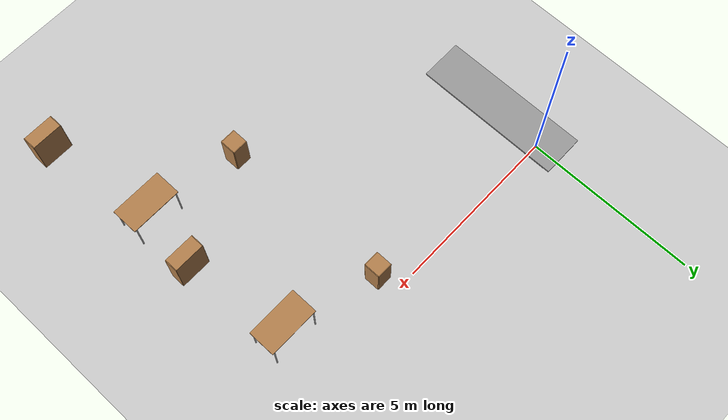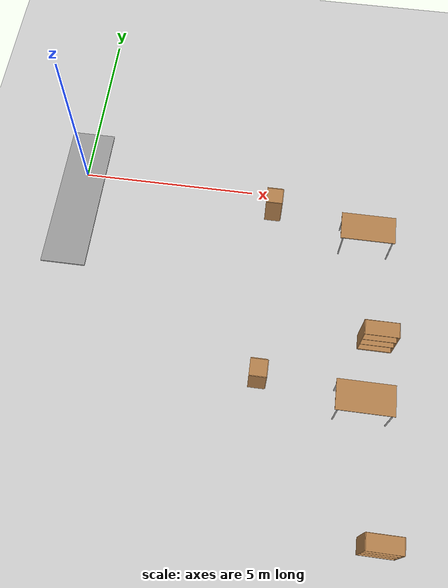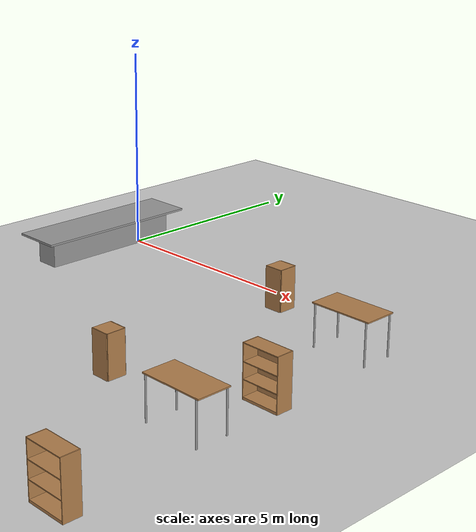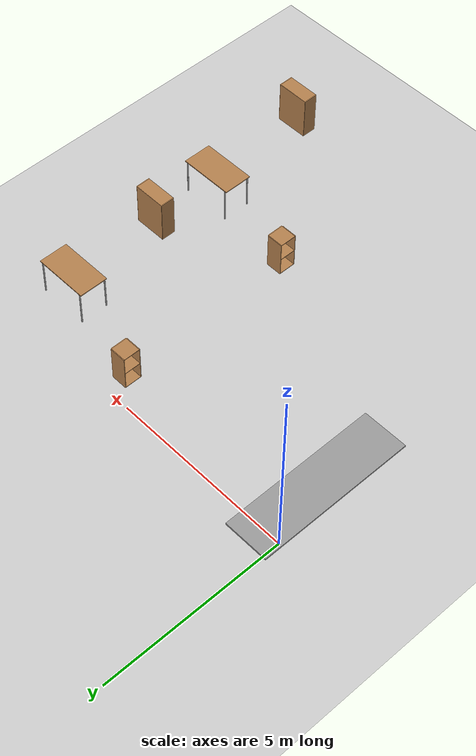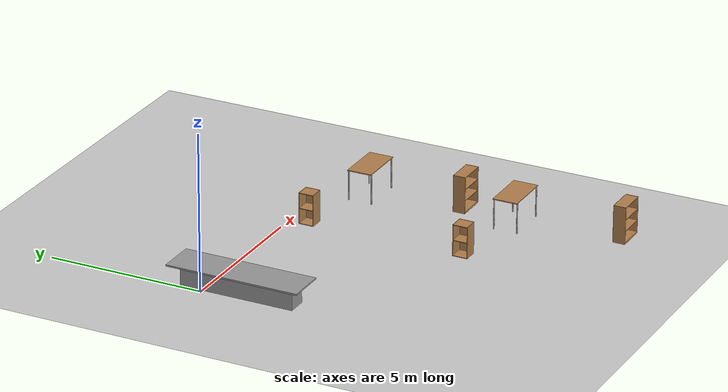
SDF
<sdf version="1.7">
 <world name="default">
  <model name="ground_plane">
   <static>1</static>
   <link name="link">
    <collision name="collision">
     <geometry><plane><normal>0 0 1</normal><size>100 100</size></plane></geometry>
     <surface>
      <contact><collide_bitmask>65535</collide_bitmask></contact>
      <friction><ode><mu>100</mu><mu2>50</mu2></ode></friction>
     </surface>
    </collision>
    <visual name="visual">
     <cast_shadows>0</cast_shadows>
     <geometry><plane><normal>0 0 1</normal><size>100 100</size></plane></geometry>
     <material>
      <script><uri>file://media/materials/scripts/gazebo.material</uri><name>Gazebo/Grey</name></script>
     </material>
    </visual>
   </link>
  </model>
  <model name="table_3">
   <static>1</static>
   <link name="link">
    <collision name="surface">
     <pose>0 0 1 0 -0 0</pose>
     <geometry><box><size>1.5 0.8 0.03</size></box></geometry>
     <surface><friction><ode><mu>0.6</mu><mu2>0.6</mu2></ode></friction></surface>
    </collision>
    <visual name="visual1">
     <pose>0 0 1 0 -0 0</pose>
     <geometry><box><size>1.5 0.8 0.03</size></box></geometry>
     <material>
      <script><uri>file://media/materials/scripts/gazebo.material</uri><name>Gazebo/Wood</name></script>
     </material>
    </visual>
    <collision name="front_left_leg">
     <pose>0.68 0.38 0.5 0 -0 0</pose>
     <geometry><cylinder><radius>0.02</radius><length>1</length></cylinder></geometry>
    </collision>
    <visual name="front_left_leg">
     <pose>0.68 0.38 0.5 0 -0 0</pose>
     <geometry><cylinder><radius>0.02</radius><length>1</length></cylinder></geometry>
     <material>
      <script><uri>file://media/materials/scripts/gazebo.material</uri><name>Gazebo/Grey</name></script>
     </material>
    </visual>
    <collision name="front_right_leg">
     <pose>0.68 -0.38 0.5 0 -0 0</pose>
     <geometry><cylinder><radius>0.02</radius><length>1</length></cylinder></geometry>
    </collision>
    <visual name="front_right_leg">
     <pose>0.68 -0.38 0.5 0 -0 0</pose>
     <geometry><cylinder><radius>0.02</radius><length>1</length></cylinder></geometry>
     <material>
      <script><uri>file://media/materials/scripts/gazebo.material</uri><name>Gazebo/Grey</name></script>
     </material>
    </visual>
    <collision name="back_right_leg">
     <pose>-0.68 -0.38 0.5 0 -0 0</pose>
     <geometry><cylinder><radius>0.02</radius><length>1</length></cylinder></geometry>
    </collision>
    <visual name="back_right_leg">
     <pose>-0.68 -0.38 0.5 0 -0 0</pose>
     <geometry><cylinder><radius>0.02</radius><length>1</length></cylinder></geometry>
     <material>
      <script><uri>file://media/materials/scripts/gazebo.material</uri><name>Gazebo/Grey</name></script>
     </material>
    </visual>
    <collision name="back_left_leg">
     <pose>-0.68 0.38 0.5 0 -0 0</pose>
     <geometry><cylinder><radius>0.02</radius><length>1</length></cylinder></geometry>
    </collision>
    <visual name="back_left_leg">
     <pose>-0.68 0.38 0.5 0 -0 0</pose>
     <geometry><cylinder><radius>0.02</radius><length>1</length></cylinder></geometry>
     <material>
      <script><uri>file://media/materials/scripts/gazebo.material</uri><name>Gazebo/Grey</name></script>
     </material>
    </visual>
   </link>
   <pose>8.35471 -1.29548 0 0 -0 0</pose>
  </model>
  <model name="table_4">
   <static>1</static>
   <link name="link">
    <collision name="surface">
     <pose>0 0 1 0 -0 0</pose>
     <geometry><box><size>1.5 0.8 0.03</size></box></geometry>
     <surface><friction><ode><mu>0.6</mu><mu2>0.6</mu2></ode></friction></surface>
    </collision>
    <visual name="visual1">
     <pose>0 0 1 0 -0 0</pose>
     <geometry><box><size>1.5 0.8 0.03</size></box></geometry>
     <material>
      <script><uri>file://media/materials/scripts/gazebo.material</uri><name>Gazebo/Wood</name></script>
     </material>
    </visual>
    <collision name="front_left_leg">
     <pose>0.68 0.38 0.5 0 -0 0</pose>
     <geometry><cylinder><radius>0.02</radius><length>1</length></cylinder></geometry>
    </collision>
    <visual name="front_left_leg">
     <pose>0.68 0.38 0.5 0 -0 0</pose>
     <geometry><cylinder><radius>0.02</radius><length>1</length></cylinder></geometry>
     <material>
      <script><uri>file://media/materials/scripts/gazebo.material</uri><name>Gazebo/Grey</name></script>
     </material>
    </visual>
    <collision name="front_right_leg">
     <pose>0.68 -0.38 0.5 0 -0 0</pose>
     <geometry><cylinder><radius>0.02</radius><length>1</length></cylinder></geometry>
    </collision>
    <visual name="front_right_leg">
     <pose>0.68 -0.38 0.5 0 -0 0</pose>
     <geometry><cylinder><radius>0.02</radius><length>1</length></cylinder></geometry>
     <material>
      <script><uri>file://media/materials/scripts/gazebo.material</uri><name>Gazebo/Grey</name></script>
     </material>
    </visual>
    <collision name="back_right_leg">
     <pose>-0.68 -0.38 0.5 0 -0 0</pose>
     <geometry><cylinder><radius>0.02</radius><length>1</length></cylinder></geometry>
    </collision>
    <visual name="back_right_leg">
     <pose>-0.68 -0.38 0.5 0 -0 0</pose>
     <geometry><cylinder><radius>0.02</radius><length>1</length></cylinder></geometry>
     <material>
      <script><uri>file://media/materials/scripts/gazebo.material</uri><name>Gazebo/Grey</name></script>
     </material>
    </visual>
    <collision name="back_left_leg">
     <pose>-0.68 0.38 0.5 0 -0 0</pose>
     <geometry><cylinder><radius>0.02</radius><length>1</length></cylinder></geometry>
    </collision>
    <visual name="back_left_leg">
     <pose>-0.68 0.38 0.5 0 -0 0</pose>
     <geometry><cylinder><radius>0.02</radius><length>1</length></cylinder></geometry>
     <material>
      <script><uri>file://media/materials/scripts/gazebo.material</uri><name>Gazebo/Grey</name></script>
     </material>
    </visual>
   </link>
   <pose>8.486 -6.08893 0 0 -0 0</pose>
  </model>
  <model name="cabinet_3">
   <static>1</static>
   <link name="cabinet_bottom_plate">
    <inertial>
     <pose>0 0 -1 0 -0 0</pose>
     <inertia><ixx>2.05</ixx><ixy>0</ixy><ixz>0</ixz><iyy>2.05</iyy><iyz>0</iyz><izz>2.05</izz></inertia>
     <mass>25</mass>
    </inertial>
    <collision name="cabinet_bottom_plate_geom">
     <pose>0 0 0.01 0 -0 0</pose>
     <geometry><box><size>0.45 0.45 0.02</size></box></geometry>
    </collision>
    <visual name="cabinet_bottom_plate_geom_visual">
     <pose>0 0 0.01 0 -0 0</pose>
     <geometry><box><size>0.45 0.45 0.02</size></box></geometry>
     <material>
      <script><uri>file://media/materials/scripts/gazebo.material</uri><name>Gazebo/Wood</name></script>
     </material>
    </visual>
    <collision name="cabinet_bottom_plate_geom_cabinet_back_plate">
     <pose>0.235 0 0.51 0 -0 0</pose>
     <geometry><box><size>0.02 0.45 1.02</size></box></geometry>
    </collision>
    <visual name="cabinet_bottom_plate_geom_cabinet_back_plate_visual">
     <pose>0.235 0 0.51 0 -0 0</pose>
     <geometry><box><size>0.02 0.45 1.02</size></box></geometry>
     <material>
      <script><uri>file://media/materials/scripts/gazebo.material</uri><name>Gazebo/Wood</name></script>
     </material>
    </visual>
    <collision name="cabinet_bottom_plate_geom_cabinet_left_plate">
     <pose>0 0.235 0.51 0 -0 0</pose>
     <geometry><box><size>0.45 0.02 1.02</size></box></geometry>
    </collision>
    <visual name="cabinet_bottom_plate_geom_cabinet_left_plate_visual">
     <pose>0 0.235 0.51 0 -0 0</pose>
     <geometry><box><size>0.45 0.02 1.02</size></box></geometry>
     <material>
      <script><uri>file://media/materials/scripts/gazebo.material</uri><name>Gazebo/Wood</name></script>
     </material>
    </visual>
    <collision name="cabinet_bottom_plate_geom_cabinet_middle_plate">
     <pose>0 0 0.51 0 -0 0</pose>
     <geometry><box><size>0.45 0.45 0.02</size></box></geometry>
    </collision>
    <visual name="cabinet_bottom_plate_geom_cabinet_middle_plate_visual">
     <pose>0 0 0.51 0 -0 0</pose>
     <geometry><box><size>0.45 0.45 0.02</size></box></geometry>
     <material>
      <script><uri>file://media/materials/scripts/gazebo.material</uri><name>Gazebo/Wood</name></script>
     </material>
    </visual>
    <collision name="cabinet_bottom_plate_geom_cabinet_right_plate">
     <pose>0 -0.235 0.51 0 -0 0</pose>
     <geometry><box><size>0.45 0.02 1.02</size></box></geometry>
    </collision>
    <visual name="cabinet_bottom_plate_geom_cabinet_right_plate_visual">
     <pose>0 -0.235 0.51 0 -0 0</pose>
     <geometry><box><size>0.45 0.02 1.02</size></box></geometry>
     <material>
      <script><uri>file://media/materials/scripts/gazebo.material</uri><name>Gazebo/Wood</name></script>
     </material>
    </visual>
    <collision name="cabinet_bottom_plate_geom_cabinet_top_plate">
     <pose>0 0 1.01 0 -0 0</pose>
     <geometry><box><size>0.45 0.45 0.02</size></box></geometry>
    </collision>
    <visual name="cabinet_bottom_plate_geom_cabinet_top_plate_visual">
     <pose>0 0 1.01 0 -0 0</pose>
     <geometry><box><size>0.45 0.45 0.02</size></box></geometry>
     <material>
      <script><uri>file://media/materials/scripts/gazebo.material</uri><name>Gazebo/Wood</name></script>
     </material>
    </visual>
   </link>
   <pose>5.68059 -0.60227 0 0 -0 0</pose>
  </model>
  <model name="cabinet_4">
   <static>1</static>
   <link name="cabinet_bottom_plate">
    <inertial>
     <pose>0 0 -1 0 -0 0</pose>
     <inertia><ixx>2.05</ixx><ixy>0</ixy><ixz>0</ixz><iyy>2.05</iyy><iyz>0</iyz><izz>2.05</izz></inertia>
     <mass>25</mass>
    </inertial>
    <collision name="cabinet_bottom_plate_geom">
     <pose>0 0 0.01 0 -0 0</pose>
     <geometry><box><size>0.45 0.45 0.02</size></box></geometry>
    </collision>
    <visual name="cabinet_bottom_plate_geom_visual">
     <pose>0 0 0.01 0 -0 0</pose>
     <geometry><box><size>0.45 0.45 0.02</size></box></geometry>
     <material>
      <script><uri>file://media/materials/scripts/gazebo.material</uri><name>Gazebo/Wood</name></script>
     </material>
    </visual>
    <collision name="cabinet_bottom_plate_geom_cabinet_back_plate">
     <pose>0.235 0 0.51 0 -0 0</pose>
     <geometry><box><size>0.02 0.45 1.02</size></box></geometry>
    </collision>
    <visual name="cabinet_bottom_plate_geom_cabinet_back_plate_visual">
     <pose>0.235 0 0.51 0 -0 0</pose>
     <geometry><box><size>0.02 0.45 1.02</size></box></geometry>
     <material>
      <script><uri>file://media/materials/scripts/gazebo.material</uri><name>Gazebo/Wood</name></script>
     </material>
    </visual>
    <collision name="cabinet_bottom_plate_geom_cabinet_left_plate">
     <pose>0 0.235 0.51 0 -0 0</pose>
     <geometry><box><size>0.45 0.02 1.02</size></box></geometry>
    </collision>
    <visual name="cabinet_bottom_plate_geom_cabinet_left_plate_visual">
     <pose>0 0.235 0.51 0 -0 0</pose>
     <geometry><box><size>0.45 0.02 1.02</size></box></geometry>
     <material>
      <script><uri>file://media/materials/scripts/gazebo.material</uri><name>Gazebo/Wood</name></script>
     </material>
    </visual>
    <collision name="cabinet_bottom_plate_geom_cabinet_middle_plate">
     <pose>0 0 0.51 0 -0 0</pose>
     <geometry><box><size>0.45 0.45 0.02</size></box></geometry>
    </collision>
    <visual name="cabinet_bottom_plate_geom_cabinet_middle_plate_visual">
     <pose>0 0 0.51 0 -0 0</pose>
     <geometry><box><size>0.45 0.45 0.02</size></box></geometry>
     <material>
      <script><uri>file://media/materials/scripts/gazebo.material</uri><name>Gazebo/Wood</name></script>
     </material>
    </visual>
    <collision name="cabinet_bottom_plate_geom_cabinet_right_plate">
     <pose>0 -0.235 0.51 0 -0 0</pose>
     <geometry><box><size>0.45 0.02 1.02</size></box></geometry>
    </collision>
    <visual name="cabinet_bottom_plate_geom_cabinet_right_plate_visual">
     <pose>0 -0.235 0.51 0 -0 0</pose>
     <geometry><box><size>0.45 0.02 1.02</size></box></geometry>
     <material>
      <script><uri>file://media/materials/scripts/gazebo.material</uri><name>Gazebo/Wood</name></script>
     </material>
    </visual>
    <collision name="cabinet_bottom_plate_geom_cabinet_top_plate">
     <pose>0 0 1.01 0 -0 0</pose>
     <geometry><box><size>0.45 0.45 0.02</size></box></geometry>
    </collision>
    <visual name="cabinet_bottom_plate_geom_cabinet_top_plate_visual">
     <pose>0 0 1.01 0 -0 0</pose>
     <geometry><box><size>0.45 0.45 0.02</size></box></geometry>
     <material>
      <script><uri>file://media/materials/scripts/gazebo.material</uri><name>Gazebo/Wood</name></script>
     </material>
    </visual>
   </link>
   <pose>5.75863 -5.67123 0 0 -0 0</pose>
  </model>
  <model name="bookshelf_7">
   <static>1</static>
   <link name="link">
    <inertial><mass>1</mass></inertial>
    <collision name="back">
     <pose>0 0.005 0.6 0 -0 0</pose>
     <geometry><box><size>0.9 0.01 1.2</size></box></geometry>
    </collision>
    <visual name="visual1">
     <pose>0 0.005 0.6 0 -0 0</pose>
     <geometry><box><size>0.9 0.01 1.2</size></box></geometry>
     <material>
      <script><uri>file://media/materials/scripts/gazebo.material</uri><name>Gazebo/Wood</name></script>
     </material>
    </visual>
    <collision name="left_side">
     <pose>0.45 -0.195 0.6 0 -0 0</pose>
     <geometry><box><size>0.02 0.4 1.2</size></box></geometry>
    </collision>
    <visual name="visual2">
     <pose>0.45 -0.195 0.6 0 -0 0</pose>
     <geometry><box><size>0.02 0.4 1.2</size></box></geometry>
     <material>
      <script><uri>file://media/materials/scripts/gazebo.material</uri><name>Gazebo/Wood</name></script>
     </material>
    </visual>
    <collision name="right_side">
     <pose>-0.45 -0.195 0.6 0 -0 0</pose>
     <geometry><box><size>0.02 0.4 1.2</size></box></geometry>
    </collision>
    <visual name="visual3">
     <pose>-0.45 -0.195 0.6 0 -0 0</pose>
     <geometry><box><size>0.02 0.4 1.2</size></box></geometry>
     <material>
      <script><uri>file://media/materials/scripts/gazebo.material</uri><name>Gazebo/Wood</name></script>
     </material>
    </visual>
    <collision name="bottom">
     <pose>0 -0.195 0.03 0 -0 0</pose>
     <geometry><box><size>0.88 0.4 0.06</size></box></geometry>
    </collision>
    <visual name="visual4">
     <pose>0 -0.195 0.03 0 -0 0</pose>
     <geometry><box><size>0.88 0.4 0.06</size></box></geometry>
     <material>
      <script><uri>file://media/materials/scripts/gazebo.material</uri><name>Gazebo/Wood</name></script>
     </material>
    </visual>
    <collision name="top">
     <pose>0 -0.195 1.19 0 -0 0</pose>
     <geometry><box><size>0.88 0.4 0.02</size></box></geometry>
    </collision>
    <visual name="visual5">
     <pose>0 -0.195 1.19 0 -0 0</pose>
     <geometry><box><size>0.88 0.4 0.02</size></box></geometry>
     <material>
      <script><uri>file://media/materials/scripts/gazebo.material</uri><name>Gazebo/Wood</name></script>
     </material>
    </visual>
    <collision name="low_shelf">
     <pose>0 -0.195 0.43 0 -0 0</pose>
     <geometry><box><size>0.88 0.4 0.02</size></box></geometry>
    </collision>
    <visual name="visual6">
     <pose>0 -0.195 0.43 0 -0 0</pose>
     <geometry><box><size>0.88 0.4 0.02</size></box></geometry>
     <material>
      <script><uri>file://media/materials/scripts/gazebo.material</uri><name>Gazebo/Wood</name></script>
     </material>
    </visual>
    <collision name="high_shelf">
     <pose>0 -0.195 0.8 0 -0 0</pose>
     <geometry><box><size>0.88 0.4 0.02</size></box></geometry>
    </collision>
    <visual name="visual7">
     <pose>0 -0.195 0.8 0 -0 0</pose>
     <geometry><box><size>0.88 0.4 0.02</size></box></geometry>
     <material>
      <script><uri>file://media/materials/scripts/gazebo.material</uri><name>Gazebo/Wood</name></script>
     </material>
    </visual>
   </link>
   <pose>8.80093 -4.10045 0 0 -0 0</pose>
  </model>
  <model name="bookshelf_8">
   <static>1</static>
   <link name="link">
    <inertial><mass>1</mass></inertial>
    <collision name="back">
     <pose>0 0.005 0.6 0 -0 0</pose>
     <geometry><box><size>0.9 0.01 1.2</size></box></geometry>
    </collision>
    <visual name="visual1">
     <pose>0 0.005 0.6 0 -0 0</pose>
     <geometry><box><size>0.9 0.01 1.2</size></box></geometry>
     <material>
      <script><uri>file://media/materials/scripts/gazebo.material</uri><name>Gazebo/Wood</name></script>
     </material>
    </visual>
    <collision name="left_side">
     <pose>0.45 -0.195 0.6 0 -0 0</pose>
     <geometry><box><size>0.02 0.4 1.2</size></box></geometry>
    </collision>
    <visual name="visual2">
     <pose>0.45 -0.195 0.6 0 -0 0</pose>
     <geometry><box><size>0.02 0.4 1.2</size></box></geometry>
     <material>
      <script><uri>file://media/materials/scripts/gazebo.material</uri><name>Gazebo/Wood</name></script>
     </material>
    </visual>
    <collision name="right_side">
     <pose>-0.45 -0.195 0.6 0 -0 0</pose>
     <geometry><box><size>0.02 0.4 1.2</size></box></geometry>
    </collision>
    <visual name="visual3">
     <pose>-0.45 -0.195 0.6 0 -0 0</pose>
     <geometry><box><size>0.02 0.4 1.2</size></box></geometry>
     <material>
      <script><uri>file://media/materials/scripts/gazebo.material</uri><name>Gazebo/Wood</name></script>
     </material>
    </visual>
    <collision name="bottom">
     <pose>0 -0.195 0.03 0 -0 0</pose>
     <geometry><box><size>0.88 0.4 0.06</size></box></geometry>
    </collision>
    <visual name="visual4">
     <pose>0 -0.195 0.03 0 -0 0</pose>
     <geometry><box><size>0.88 0.4 0.06</size></box></geometry>
     <material>
      <script><uri>file://media/materials/scripts/gazebo.material</uri><name>Gazebo/Wood</name></script>
     </material>
    </visual>
    <collision name="top">
     <pose>0 -0.195 1.19 0 -0 0</pose>
     <geometry><box><size>0.88 0.4 0.02</size></box></geometry>
    </collision>
    <visual name="visual5">
     <pose>0 -0.195 1.19 0 -0 0</pose>
     <geometry><box><size>0.88 0.4 0.02</size></box></geometry>
     <material>
      <script><uri>file://media/materials/scripts/gazebo.material</uri><name>Gazebo/Wood</name></script>
     </material>
    </visual>
    <collision name="low_shelf">
     <pose>0 -0.195 0.43 0 -0 0</pose>
     <geometry><box><size>0.88 0.4 0.02</size></box></geometry>
    </collision>
    <visual name="visual6">
     <pose>0 -0.195 0.43 0 -0 0</pose>
     <geometry><box><size>0.88 0.4 0.02</size></box></geometry>
     <material>
      <script><uri>file://media/materials/scripts/gazebo.material</uri><name>Gazebo/Wood</name></script>
     </material>
    </visual>
    <collision name="high_shelf">
     <pose>0 -0.195 0.8 0 -0 0</pose>
     <geometry><box><size>0.88 0.4 0.02</size></box></geometry>
    </collision>
    <visual name="visual7">
     <pose>0 -0.195 0.8 0 -0 0</pose>
     <geometry><box><size>0.88 0.4 0.02</size></box></geometry>
     <material>
      <script><uri>file://media/materials/scripts/gazebo.material</uri><name>Gazebo/Wood</name></script>
     </material>
    </visual>
   </link>
   <pose>9.02459 -9.2545 0 0 -0 0</pose>
  </model>
  <model name="box_table">
   <link name="link">
    <inertial>
     <mass>1</mass>
     <inertia>
      <ixx>0.166667</ixx>
      <ixy>0</ixy>
      <ixz>0</ixz>
      <iyy>0.166667</iyy>
      <iyz>0</iyz>
      <izz>0.166667</izz>
     </inertia>
    </inertial>
    <pose>0.328012 0.55915 -0 0 -0 0</pose>
    <visual name="visual">
     <geometry><box><size>0.6096 3.6576 0.6858</size></box></geometry>
     <material>
      <script><name>Gazebo/Grey</name><uri>file://media/materials/scripts/gazebo.material</uri></script>
      <shader type="pixel"><normal_map>__default__</normal_map></shader>
      <ambient>0.3 0.3 0.3 1</ambient>
      <diffuse>0.7 0.7 0.7 1</diffuse>
      <specular>0.01 0.01 0.01 1</specular>
      <emissive>0 0 0 1</emissive>
     </material>
    </visual>
    <collision name="collision">
     <geometry><box><size>0.6096 3.6576 0.6858</size></box></geometry>
     <surface>
      <friction>
       <ode><mu>1</mu><mu2>1</mu2><fdir1>0 0 0</fdir1><slip1>0</slip1><slip2>0</slip2></ode>
       <torsional>
        <coefficient>1</coefficient>
        <patch_radius>0</patch_radius>
        <surface_radius>0</surface_radius>
        <use_patch_radius>1</use_patch_radius>
        <ode><slip>0</slip></ode>
       </torsional>
      </friction>
      <bounce><restitution_coefficient>0</restitution_coefficient><threshold>1e+06</threshold></bounce>
      <contact>
       <collide_without_contact>0</collide_without_contact>
       <collide_without_contact_bitmask>1</collide_without_contact_bitmask>
       <collide_bitmask>1</collide_bitmask>
       <ode>
        <soft_cfm>0</soft_cfm>
        <soft_erp>0.2</soft_erp>
        <kp>1e+13</kp>
        <kd>1</kd>
        <max_vel>0.01</max_vel>
        <min_depth>0</min_depth>
       </ode>
       <bullet>
        <split_impulse>1</split_impulse>
        <split_impulse_penetration_threshold>-0.01</split_impulse_penetration_threshold>
        <soft_cfm>0</soft_cfm>
        <soft_erp>0.2</soft_erp>
        <kp>1e+13</kp>
        <kd>1</kd>
       </bullet>
      </contact>
     </surface>
    </collision>
   </link>
   <link name="link_0">
    <inertial>
     <mass>1</mass>
     <inertia>
      <ixx>0.166667</ixx>
      <ixy>0</ixy>
      <ixz>0</ixz>
      <iyy>0.166667</iyy>
      <iyz>0</iyz>
      <izz>0.166667</izz>
     </inertia>
    </inertial>
    <pose>0.328012 0.55915 0.363031 0 -0 0</pose>
    <visual name="visual">
     <geometry><box><size>1.2192 4.2672 0.0508</size></box></geometry>
     <material>
      <lighting>1</lighting>
      <script><uri>file://media/materials/scripts/gazebo.material</uri><name>Gazebo/Grey</name></script>
      <shader type="pixel"><normal_map>__default__</normal_map></shader>
      <ambient>0.3 0.3 0.3 1</ambient>
      <diffuse>0.7 0.7 0.7 1</diffuse>
      <specular>0.01 0.01 0.01 1</specular>
      <emissive>0 0 0 1</emissive>
     </material>
    </visual>
    <collision name="collision">
     <geometry><box><size>1.2192 4.2672 0.0508</size></box></geometry>
     <surface>
      <friction>
       <ode><mu>1</mu><mu2>1</mu2><fdir1>0 0 0</fdir1><slip1>0</slip1><slip2>0</slip2></ode>
       <torsional>
        <coefficient>1</coefficient>
        <patch_radius>0</patch_radius>
        <surface_radius>0</surface_radius>
        <use_patch_radius>1</use_patch_radius>
        <ode><slip>0</slip></ode>
       </torsional>
      </friction>
      <bounce><restitution_coefficient>0</restitution_coefficient><threshold>1e+06</threshold></bounce>
      <contact>
       <collide_without_contact>0</collide_without_contact>
       <collide_without_contact_bitmask>1</collide_without_contact_bitmask>
       <collide_bitmask>1</collide_bitmask>
       <ode>
        <soft_cfm>0</soft_cfm>
        <soft_erp>0.2</soft_erp>
        <kp>1e+13</kp>
        <kd>1</kd>
        <max_vel>0.01</max_vel>
        <min_depth>0</min_depth>
       </ode>
       <bullet>
        <split_impulse>1</split_impulse>
        <split_impulse_penetration_threshold>-0.01</split_impulse_penetration_threshold>
        <soft_cfm>0</soft_cfm>
        <soft_erp>0.2</soft_erp>
        <kp>1e+13</kp>
        <kd>1</kd>
       </bullet>
      </contact>
     </surface>
    </collision>
   </link>
   <joint name="link_0_JOINT_1" type="fixed">
    <parent>link_0</parent>
    <child>link</child>
    <physics>
     <ode><limit><cfm>0</cfm><erp>0.2</erp></limit><suspension><cfm>0</cfm><erp>0.2</erp></suspension></ode>
    </physics>
   </joint>
   <static>0</static>
   <pose>-0.182917 -1.81078 0.5 0 -0 0</pose>
  </model>
 </world>
</sdf>
